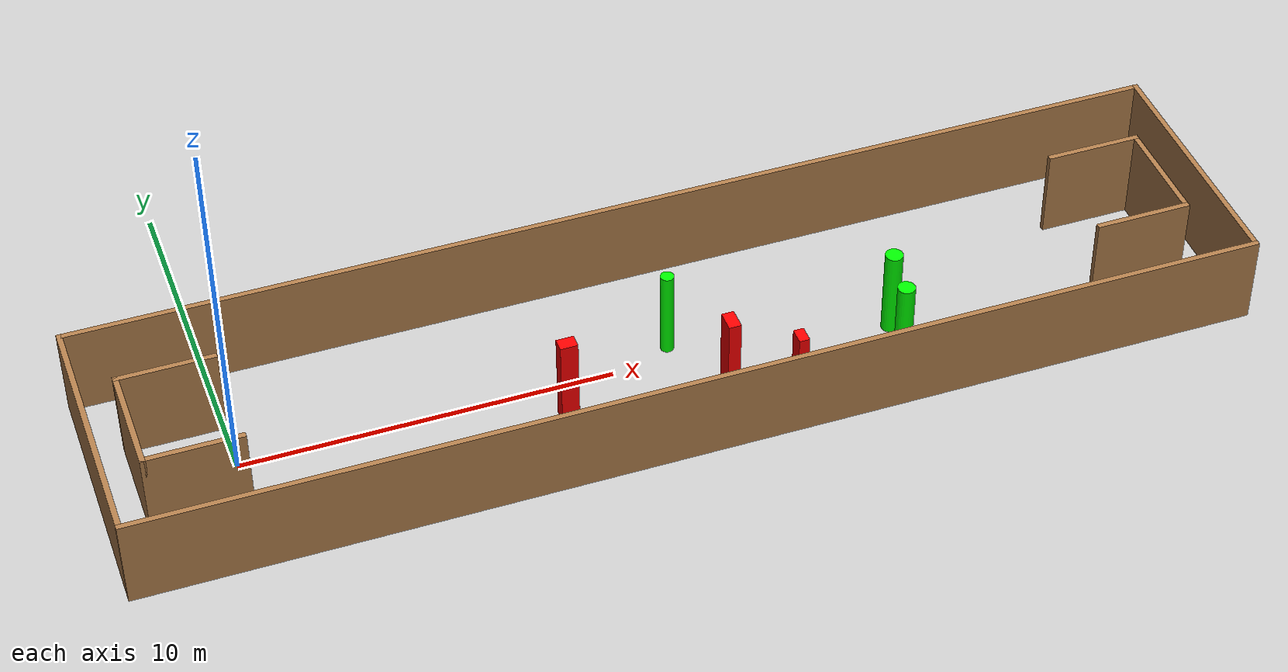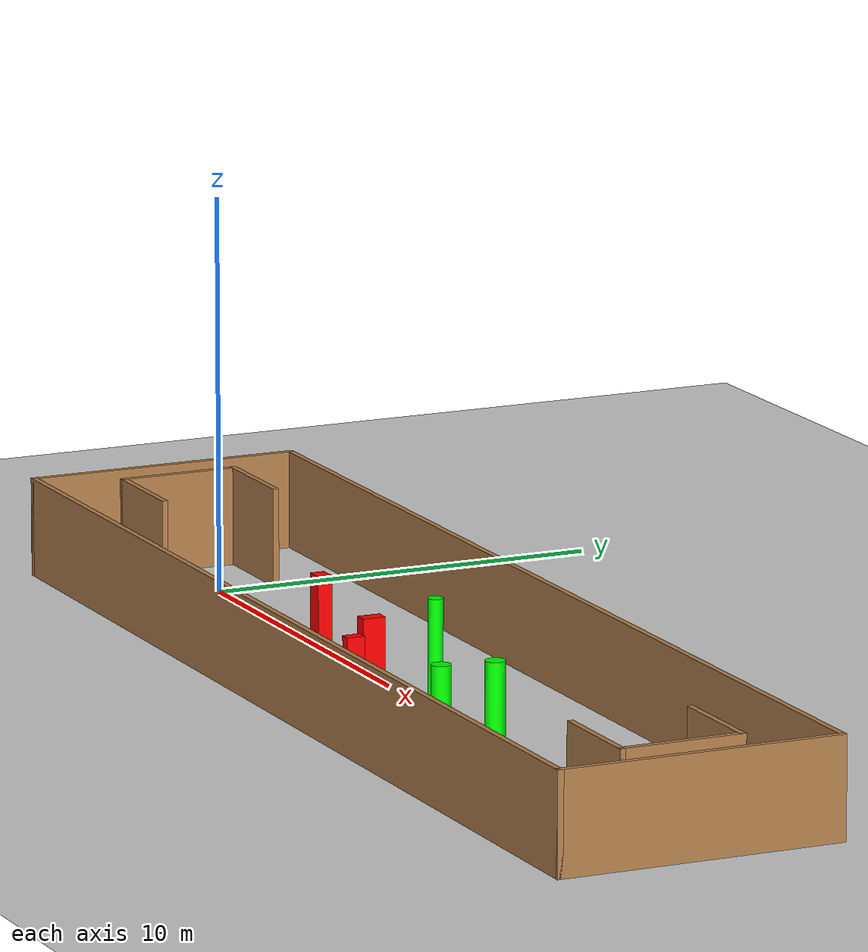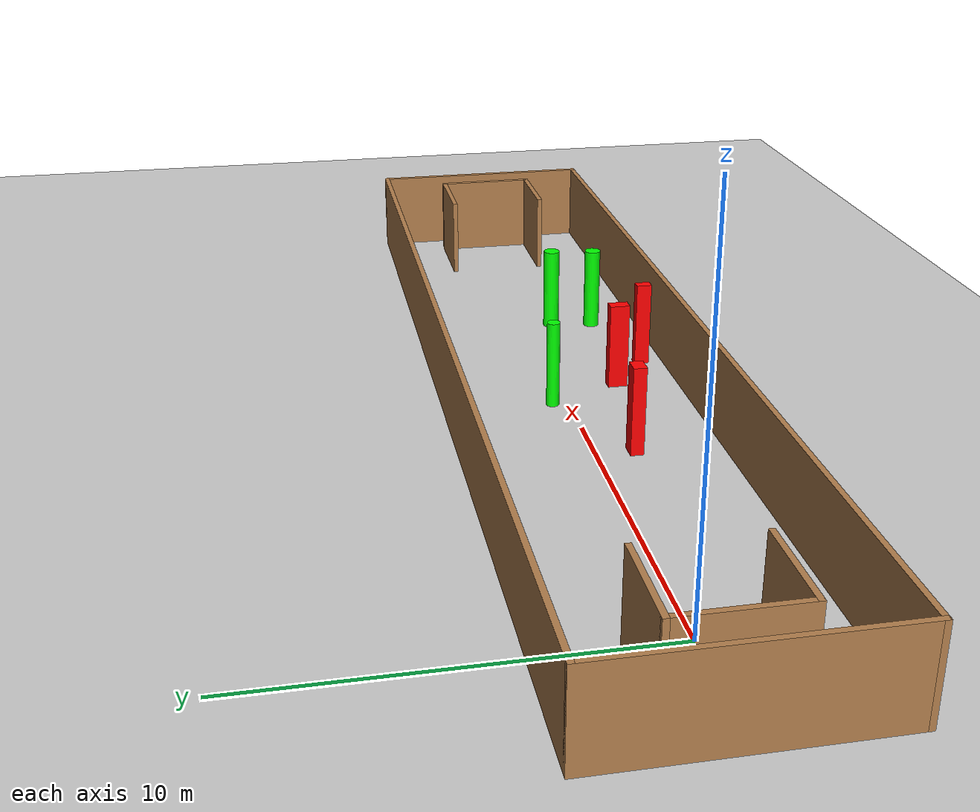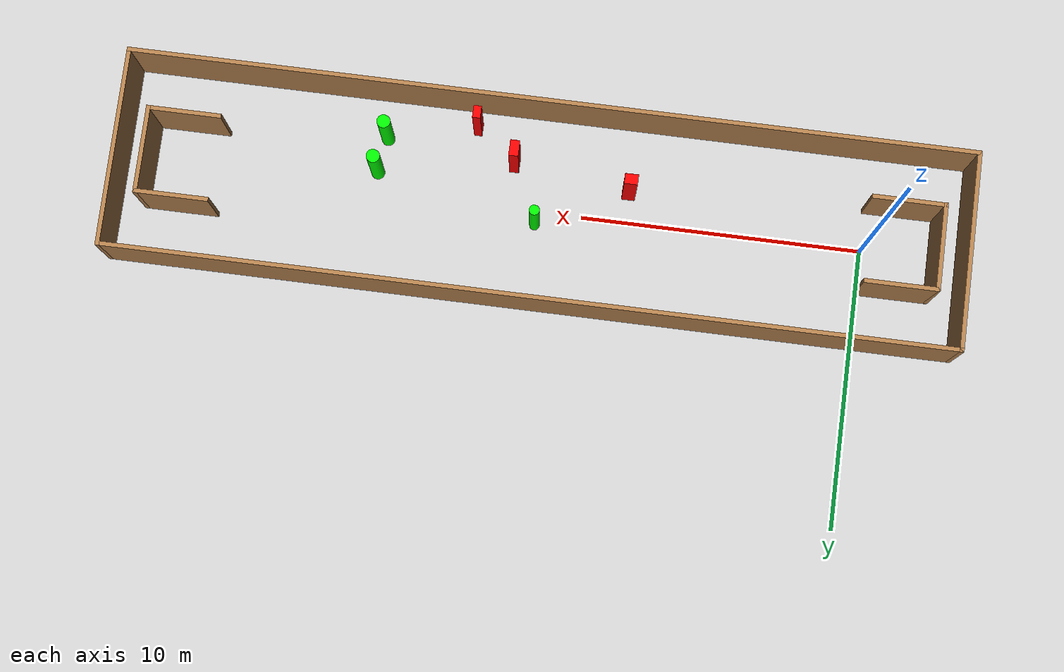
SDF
<sdf version="1.7">
 <world name="default">
  <light name="sun" type="directional">
   <pose>0 0 10 0 -0 0</pose>
   <diffuse>0.8 0.8 0.8 1</diffuse>
   <specular>0.2 0.2 0.2 1</specular>
   <attenuation>
    <range>1000</range>
    <constant>0.9</constant>
    <linear>0.01</linear>
    <quadratic>0.001</quadratic>
   </attenuation>
   <direction>-0.5 0.1 -0.9</direction>
   <spot><inner_angle>0</inner_angle><outer_angle>0</outer_angle><falloff>0</falloff></spot>
  </light>
  <model name="ground_plane">
   <static>1</static>
   <link name="link">
    <collision name="collision">
     <geometry><plane><normal>0 0 1</normal><size>100 100</size></plane></geometry>
     <surface>
      <contact><collide_bitmask>65535</collide_bitmask></contact>
      <friction><ode><mu>100</mu><mu2>50</mu2></ode></friction>
     </surface>
    </collision>
    <visual name="visual">
     <cast_shadows>0</cast_shadows>
     <geometry><plane><normal>0 0 1</normal><size>100 100</size></plane></geometry>
     <material>
      <script><uri>file://media/materials/scripts/gazebo.material</uri><name>Gazebo/Grey</name></script>
     </material>
    </visual>
   </link>
  </model>
  <gravity>0 0 -9.8</gravity>
  <magnetic_field>6e-06 2.3e-05 -4.2e-05</magnetic_field>
  <atmosphere type="adiabatic"/>
  <physics type="ode">
   <max_step_size>0.001</max_step_size>
   <real_time_factor>1</real_time_factor>
   <real_time_update_rate>1000</real_time_update_rate>
  </physics>
  <scene><ambient>0.4 0.4 0.4 1</ambient><background>0.7 0.7 0.7 1</background><shadows>1</shadows></scene>
  <spherical_coordinates>
   <surface_model>EARTH_WGS84</surface_model>
   <latitude_deg>0</latitude_deg>
   <longitude_deg>0</longitude_deg>
   <elevation>0</elevation>
   <heading_deg>0</heading_deg>
  </spherical_coordinates>
  <model name="my_base_walls">
   <link name="Wall_0">
    <collision name="Wall_0_Collision">
     <geometry><box><size>7.15 0.15 2.5</size></box></geometry>
     <pose>0 0 1.25 0 -0 0</pose>
    </collision>
    <visual name="Wall_0_Visual">
     <pose>0 0 1.25 0 -0 0</pose>
     <geometry><box><size>7.15 0.15 2.5</size></box></geometry>
     <material>
      <script><uri>file://media/materials/scripts/gazebo.material</uri><name>Gazebo/Wood</name></script>
      <ambient>1 1 1 1</ambient>
     </material>
     <meta><layer>0</layer></meta>
    </visual>
    <pose>-15 0 0 0 -0 1.5708</pose>
   </link>
   <link name="Wall_10">
    <collision name="Wall_10_Collision">
     <geometry><box><size>2.65 0.15 2.5</size></box></geometry>
     <pose>0 0 1.25 0 -0 0</pose>
    </collision>
    <visual name="Wall_10_Visual">
     <pose>0 0 1.25 0 -0 0</pose>
     <geometry><box><size>2.65 0.15 2.5</size></box></geometry>
     <material>
      <script><uri>file://media/materials/scripts/gazebo.material</uri><name>Gazebo/Wood</name></script>
      <ambient>1 1 1 1</ambient>
     </material>
     <meta><layer>0</layer></meta>
    </visual>
    <pose>-12.75 -1.5 0 0 -0 0</pose>
   </link>
   <link name="Wall_12">
    <collision name="Wall_12_Collision">
     <geometry><box><size>2.65 0.15 2.5</size></box></geometry>
     <pose>0 0 1.25 0 -0 0</pose>
    </collision>
    <visual name="Wall_12_Visual">
     <pose>0 0 1.25 0 -0 0</pose>
     <geometry><box><size>2.65 0.15 2.5</size></box></geometry>
     <material>
      <script><uri>file://media/materials/scripts/gazebo.material</uri><name>Gazebo/Wood</name></script>
      <ambient>1 1 1 1</ambient>
     </material>
     <meta><layer>0</layer></meta>
    </visual>
    <pose>-12.75 1.5 0 0 -0 0</pose>
   </link>
   <link name="Wall_14">
    <collision name="Wall_14_Collision">
     <geometry><box><size>3.15 0.15 2.5</size></box></geometry>
     <pose>0 0 1.25 0 -0 0</pose>
    </collision>
    <visual name="Wall_14_Visual">
     <pose>0 0 1.25 0 -0 0</pose>
     <geometry><box><size>3.15 0.15 2.5</size></box></geometry>
     <material>
      <script><uri>file://media/materials/scripts/gazebo.material</uri><name>Gazebo/Wood</name></script>
      <ambient>1 1 1 1</ambient>
     </material>
     <meta><layer>0</layer></meta>
    </visual>
    <pose>14 0 0 0 -0 -1.5708</pose>
   </link>
   <link name="Wall_15">
    <collision name="Wall_15_Collision">
     <geometry><box><size>2.65 0.15 2.5</size></box></geometry>
     <pose>0 0 1.25 0 -0 0</pose>
    </collision>
    <visual name="Wall_15_Visual">
     <pose>0 0 1.25 0 -0 0</pose>
     <geometry><box><size>2.65 0.15 2.5</size></box></geometry>
     <material>
      <script><uri>file://media/materials/scripts/gazebo.material</uri><name>Gazebo/Wood</name></script>
      <ambient>1 1 1 1</ambient>
     </material>
     <meta><layer>0</layer></meta>
    </visual>
    <pose>12.75 -1.5 0 0 -0 3.14159</pose>
   </link>
   <link name="Wall_17">
    <collision name="Wall_17_Collision">
     <geometry><box><size>2.65 0.15 2.5</size></box></geometry>
     <pose>0 0 1.25 0 -0 0</pose>
    </collision>
    <visual name="Wall_17_Visual">
     <pose>0 0 1.25 0 -0 0</pose>
     <geometry><box><size>2.65 0.15 2.5</size></box></geometry>
     <material>
      <script><uri>file://media/materials/scripts/gazebo.material</uri><name>Gazebo/Wood</name></script>
      <ambient>1 1 1 1</ambient>
     </material>
     <meta><layer>0</layer></meta>
    </visual>
    <pose>12.75 1.5 0 0 -0 3.14159</pose>
   </link>
   <link name="Wall_2">
    <collision name="Wall_2_Collision">
     <geometry><box><size>30.15 0.15 2.5</size></box></geometry>
     <pose>0 0 1.25 0 -0 0</pose>
    </collision>
    <visual name="Wall_2_Visual">
     <pose>0 0 1.25 0 -0 0</pose>
     <geometry><box><size>30.15 0.15 2.5</size></box></geometry>
     <material>
      <script><uri>file://media/materials/scripts/gazebo.material</uri><name>Gazebo/Wood</name></script>
      <ambient>1 1 1 1</ambient>
     </material>
     <meta><layer>0</layer></meta>
    </visual>
    <pose>-0 -3.5 0 0 -0 0</pose>
   </link>
   <link name="Wall_4">
    <collision name="Wall_4_Collision">
     <geometry><box><size>30.15 0.15 2.5</size></box></geometry>
     <pose>0 0 1.25 0 -0 0</pose>
    </collision>
    <visual name="Wall_4_Visual">
     <pose>0 0 1.25 0 -0 0</pose>
     <geometry><box><size>30.15 0.15 2.5</size></box></geometry>
     <material>
      <script><uri>file://media/materials/scripts/gazebo.material</uri><name>Gazebo/Wood</name></script>
      <ambient>1 1 1 1</ambient>
     </material>
     <meta><layer>0</layer></meta>
    </visual>
    <pose>-0 3.5 0 0 -0 0</pose>
   </link>
   <link name="Wall_6">
    <collision name="Wall_6_Collision">
     <geometry><box><size>7.15 0.15 2.5</size></box></geometry>
     <pose>0 0 1.25 0 -0 0</pose>
    </collision>
    <visual name="Wall_6_Visual">
     <pose>0 0 1.25 0 -0 0</pose>
     <geometry><box><size>7.15 0.15 2.5</size></box></geometry>
     <material>
      <script><uri>file://media/materials/scripts/gazebo.material</uri><name>Gazebo/Wood</name></script>
      <ambient>1 1 1 1</ambient>
     </material>
     <meta><layer>0</layer></meta>
    </visual>
    <pose>15 0 0 0 -0 -1.5708</pose>
   </link>
   <link name="Wall_9">
    <collision name="Wall_9_Collision">
     <geometry><box><size>3.15 0.15 2.5</size></box></geometry>
     <pose>0 0 1.25 0 -0 0</pose>
    </collision>
    <visual name="Wall_9_Visual">
     <pose>0 0 1.25 0 -0 0</pose>
     <geometry><box><size>3.15 0.15 2.5</size></box></geometry>
     <material>
      <script><uri>file://media/materials/scripts/gazebo.material</uri><name>Gazebo/Wood</name></script>
      <ambient>1 1 1 1</ambient>
     </material>
     <meta><layer>0</layer></meta>
    </visual>
    <pose>-14 0 0 0 -0 -1.5708</pose>
   </link>
   <static>1</static>
   <pose>11.5 0 0 0 -0 0</pose>
  </model>
  <model name="cylinder1">
   <static>1</static>
   <link name="link">
    <inertial>
     <mass>1</mass>
     <inertia><ixx>0.5</ixx><ixy>0</ixy><ixz>0</ixz><iyy>0.5</iyy><iyz>0</iyz><izz>1</izz></inertia>
    </inertial>
    <collision name="collision">
     <geometry><cylinder><radius>0.18272370373368</radius><length>2.5</length></cylinder></geometry>
    </collision>
    <visual name="visual">
     <geometry><cylinder><radius>0.18272370373368</radius><length>2.5</length></cylinder></geometry>
     <material>
      <ambient>0 1 0 1</ambient>
      <diffuse>0 1 0 1</diffuse>
      <specular>0.1 0.1 0.1 1</specular>
      <emissive>0 0 0 0</emissive>
     </material>
    </visual>
   </link>
   <pose>11.651576734890908 0.46433895742445985 1.25 0 0 0</pose>
  </model>
  <model name="cylinder2">
   <static>1</static>
   <link name="link">
    <inertial>
     <mass>1</mass>
     <inertia><ixx>0.5</ixx><ixy>0</ixy><ixz>0</ixz><iyy>0.5</iyy><iyz>0</iyz><izz>1</izz></inertia>
    </inertial>
    <collision name="collision">
     <geometry><cylinder><radius>0.2412053934188822</radius><length>2.5</length></cylinder></geometry>
    </collision>
    <visual name="visual">
     <geometry><cylinder><radius>0.2412053934188822</radius><length>2.5</length></cylinder></geometry>
     <material>
      <ambient>0 1 0 1</ambient>
      <diffuse>0 1 0 1</diffuse>
      <specular>0.1 0.1 0.1 1</specular>
      <emissive>0 0 0 0</emissive>
     </material>
    </visual>
   </link>
   <pose>17.47041686692627 -0.7478489381354683 1.25 0 0 0</pose>
  </model>
  <model name="cylinder3">
   <static>1</static>
   <link name="link">
    <inertial>
     <mass>1</mass>
     <inertia><ixx>0.5</ixx><ixy>0</ixy><ixz>0</ixz><iyy>0.5</iyy><iyz>0</iyz><izz>1</izz></inertia>
    </inertial>
    <collision name="collision">
     <geometry><cylinder><radius>0.2378138976721405</radius><length>2.5</length></cylinder></geometry>
    </collision>
    <visual name="visual">
     <geometry><cylinder><radius>0.2378138976721405</radius><length>2.5</length></cylinder></geometry>
     <material>
      <ambient>0 1 0 1</ambient>
      <diffuse>0 1 0 1</diffuse>
      <specular>0.1 0.1 0.1 1</specular>
      <emissive>0 0 0 0</emissive>
     </material>
    </visual>
   </link>
   <pose>17.272268333269015 -2.024396071122369 1.25 0 0 0</pose>
  </model>
  <model name="box1">
   <static>1</static>
   <link name="link">
    <inertial>
     <mass>1</mass>
     <inertia><ixx>0.083</ixx><ixy>0</ixy><ixz>0</ixz><iyy>0.083</iyy><iyz>0</iyz><izz>0.083</izz></inertia>
    </inertial>
    <collision name="collision">
     <geometry><box><size>0.47425769117377087 0.3648147520010516 2.5</size></box></geometry>
    </collision>
    <visual name="visual">
     <geometry><box><size>0.47425769117377087 0.3648147520010516 2.5</size></box></geometry>
     <material>
      <ambient>1 0 0 1</ambient>
      <diffuse>1 0 0 1</diffuse>
      <specular>0.1 0.1 0.1 1</specular>
      <emissive>0 0 0 0</emissive>
     </material>
    </visual>
    <sensor name="my_contact" type="contact">
     <contact><collision>box_collision</collision><topic>__default_topic__</topic></contact>
    </sensor>
   </link>
   <pose>8.43503941861354 -1.0495206613785504 1.25 0 0 0</pose>
  </model>
  <model name="box2">
   <static>1</static>
   <link name="link">
    <inertial>
     <mass>1</mass>
     <inertia><ixx>0.083</ixx><ixy>0</ixy><ixz>0</ixz><iyy>0.083</iyy><iyz>0</iyz><izz>0.083</izz></inertia>
    </inertial>
    <collision name="collision">
     <geometry><box><size>0.28118530488786575 0.43533847096653794 2.5</size></box></geometry>
    </collision>
    <visual name="visual">
     <geometry><box><size>0.28118530488786575 0.43533847096653794 2.5</size></box></geometry>
     <material>
      <ambient>1 0 0 1</ambient>
      <diffuse>1 0 0 1</diffuse>
      <specular>0.1 0.1 0.1 1</specular>
      <emissive>0 0 0 0</emissive>
     </material>
    </visual>
    <sensor name="my_contact" type="contact">
     <contact><collision>box_collision</collision><topic>__default_topic__</topic></contact>
    </sensor>
   </link>
   <pose>14.078471723856605 -2.77558672678989 1.25 0 0 0</pose>
  </model>
  <model name="box3">
   <static>1</static>
   <link name="link">
    <inertial>
     <mass>1</mass>
     <inertia><ixx>0.083</ixx><ixy>0</ixy><ixz>0</ixz><iyy>0.083</iyy><iyz>0</iyz><izz>0.083</izz></inertia>
    </inertial>
    <collision name="collision">
     <geometry><box><size>0.33520580368750047 0.562522970624378 2.5</size></box></geometry>
    </collision>
    <visual name="visual">
     <geometry><box><size>0.33520580368750047 0.562522970624378 2.5</size></box></geometry>
     <material>
      <ambient>1 0 0 1</ambient>
      <diffuse>1 0 0 1</diffuse>
      <specular>0.1 0.1 0.1 1</specular>
      <emissive>0 0 0 0</emissive>
     </material>
    </visual>
    <sensor name="my_contact" type="contact">
     <contact><collision>box_collision</collision><topic>__default_topic__</topic></contact>
    </sensor>
   </link>
   <pose>12.619975023304088 -1.6479687292110046 1.25 0 0 0</pose>
  </model>
 </world>
</sdf>
